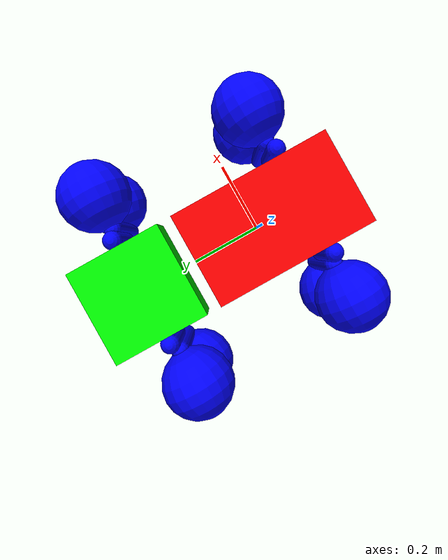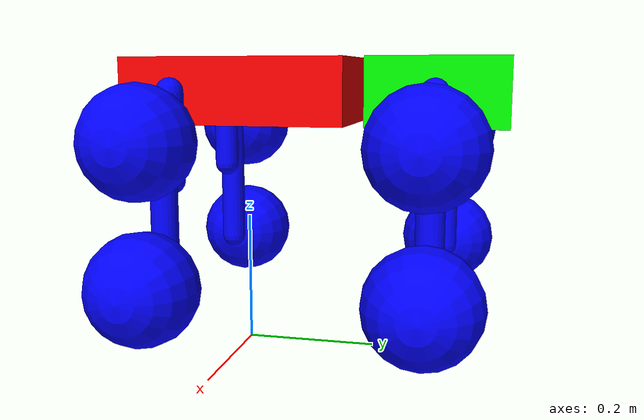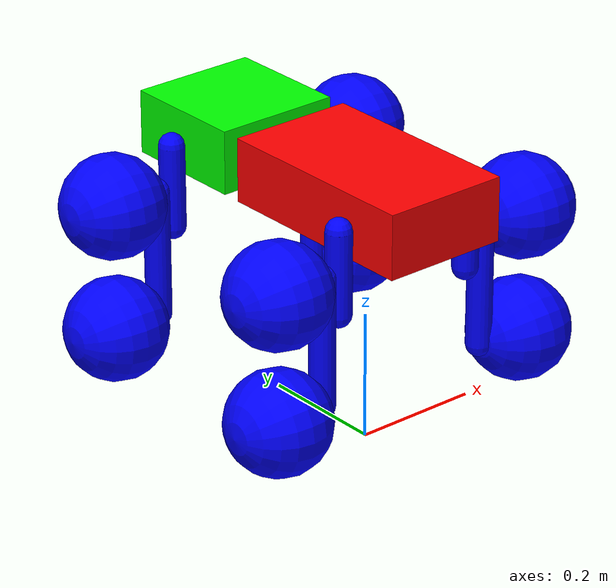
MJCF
<mujoco>
  <asset>
    <texture type="skybox" builtin="gradient" rgb1="1 1 1" rgb2=".6 .8 1" width="256" height="256"/>
  </asset>

    <worldbody>
        <light diffuse=".5 .5 .5" pos="0 0 3" dir="0 0 -1"/>
        <!-- Rear Body Section -->
        <body name="rearBody" pos="0 0 0.4">
        <geom  type="box" size="0.1 0.17 0.05" rgba="1 0 0 1"/>
        <joint type = "free"/>
            <!-- Front Body Section -->
            <body name="frontBody" pos = "0 .3 0">
            <joint type = "hinge" axis = "0 1 0" name = "waist" damping="4" stiffness = "8"/>
            <geom type="box" size="0.1 0.1 0.05" rgba="0 1 0 1"/>
                <!-- Font Right Leg-->
                <!-- Front Right Thigh -->

                <body name="fr_thigh" pos=".12 0 -0.065">
                <joint type="hinge" axis="1 0 0" pos = "0 0 .065" name="fr_hip" damping="4"/>
                <geom type="capsule" size="0.02 0.065" rgba="0 0 1 1"/>
                <!-- Front Right Calf -->
                    <body name="fr_calf" pos=".03 0 -0.1">
                    <geom type="capsule" size="0.02 0.1" rgba="0 0 1 1"/>
                    <joint type="hinge" axis="1 0 0" name="fr_knee" damping="4"/>
                        <!-- Front Right Wheel 1 -->
                        <body name="fr_wheel1" pos=".08 0 -0.1" zaxis = "1 0 0">
                        <geom type="sphere" size="0.08" rgba="0 0 1 1" friction = "0.4 0.005 0.005" solref="0.1 1"/>
                        <joint type="hinge" axis="0 0 1" name="fr_wheel1_joint" damping="4"/>
                        </body>
                        <!-- Front Right Wheel 2 -->
                        <body name="fr_wheel2" pos=".08 0 0.1" zaxis = "1 0 0">
                        <geom type="sphere" size="0.08" rgba="0 0 1 1" friction = "0.4 0.005 0.005" solref="0.1 1"/>
                        <joint type="hinge" axis="0 0 1" name="fr_wheel2_joint" damping="4"/>

                        </body>
                    </body>
                </body>
                <!-- Front Left Leg -->
                <!-- Front Left Thigh -->
                <body name="fl_thigh" pos="-.12 0 -0.065">
                <joint type="hinge" axis="1 0 0" pos = "0 0 .065" name="fl_hip" damping="4"/>
                <geom type="capsule" size="0.02 0.065" rgba="0 0 1 1"/>
                    <!-- Front Left Calf -->
                    <body name="fl_calf" pos="-.03 0 -0.1">
                    <geom type="capsule" size="0.02 0.1" rgba="0 0 1 1"/>
                    <joint type="hinge" axis="1 0 0" name="fl_knee" damping="4"/>
                        <!-- Front Left Wheel 1 -->
                        <body name="fl_wheel1" pos="-.08 0 -0.1" zaxis = "1 0 0">
                        <geom type="sphere" size="0.08" rgba="0 0 1 1" friction = "0.4 0.005 0.005" solref="0.1 1"/>
                        <joint type="hinge" axis="0 0 1" name="fl_wheel1_joint" damping="4"/>
                        </body>
                        <!-- Front Left Wheel 2 -->
                        <body name="fl_wheel2" pos="-.08 0 0.1" zaxis = "1 0 0">
                        <geom type="sphere" size="0.08" rgba="0 0 1 1" friction = "0.4 0.005 0.005" solref="0.1 1"/>
                        <joint type="hinge" axis="0 0 1" name="fl_wheel2_joint" damping="4"/>
                        </body>
                    </body>
                </body>
            </body>

            <!-- Back Right Leg -->
            <!-- Back Right Thigh -->
            <body name="br_thigh" pos=".12 -0.08 -0.065">
            <joint type="hinge" axis="1 0 0" pos = "0 0 .065" name="br_hip" damping="4"/>
             <geom type="capsule" size="0.02 0.065" rgba="0 0 1 1"/>
                <!-- Back Right Calf -->
                <body name="br_calf" pos=".03 0 -0.1">
                <geom type="capsule" size="0.02 0.1" rgba="0 0 1 1"/>
                <joint type="hinge" axis="1 0 0" name="br_knee" damping="4"/>
                    <!-- Back Right Wheel 1 -->
                    <body name="br_wheel1" pos=".08 0 -0.1" zaxis = "1 0 0">
                    <geom type="sphere" size="0.08" rgba="0 0 1 1" friction = "0.4 0.005 0.005" solref="0.1 1"/>
                    <joint type="hinge" axis="0 0 1" name="br_wheel1_joint" damping="4"/>
                    </body>
                    <!-- Back Right Wheel 2 -->
                    <body name="br_wheel2" pos=".08 0 0.1" zaxis = "1 0 0">
                    <geom type="sphere" size="0.08" rgba="0 0 1 1" friction = "0.4 0.005 0.005" solref="0.1 1"/>
                    <joint type="hinge" axis="0 0 1" name="br_wheel2_joint" damping="4"/>
                    </body>
                </body>
                </body>

            <!-- Back Left Leg -->
            <!-- Back Left Thigh -->
            <body name="bl_thigh" pos="-.12 -0.08 -0.065">
            <joint type="hinge" axis="1 0 0" pos = "0 0 .065" name="bl_hip" damping="4"/>
            <geom type="capsule" size="0.02 0.065" rgba="0 0 1 1"/>
                <!-- Back Left Calf -->
                <body name="bl_calf" pos="-.03 0 -0.1">
                <geom type="capsule" size="0.02 0.1" rgba="0 0 1 1"/>
                <joint type="hinge" axis="1 0 0" name="bl_knee" damping="4"/>
                    <!-- Back Left Wheel 1 -->
                    <body name="bl_wheel1" pos="-.08 0 -0.1" zaxis = "1 0 0">
                    <geom type="sphere" size="0.08" rgba="0 0 1 1" friction = "0.4 0.005 0.005" solref="0.1 1"/>
                    <joint type="hinge" axis="0 0 1" name="bl_wheel1_joint" damping="4"/>
                    </body>
                    <!-- Back Left Wheel 2 -->
                    <body name="bl_wheel2" pos="-.08 0 0.1" zaxis = "1 0 0">
                    <geom type="sphere" size="0.08" rgba="0 0 1 1" friction = "0.4 0.005 0.005" solref="0.1 1"/>
                    <joint type="hinge" axis="0 0 1" name="bl_wheel2_joint" damping="4"/>
                    </body>
                </body>
            </body>

        </body>
    </worldbody>
    <!-- Defining the actuators -->
    <actuator>
        <position joint="fr_hip" kp="30"/>
        <position joint="fr_knee" kp="30"/>
        <position joint="fr_wheel1_joint" kp="30"/>
        <position joint="fr_wheel2_joint" kp="30"/>
        <position joint="fl_hip" kp="30"/>
        <position joint="fl_knee" kp="30"/>
        <position joint="fl_wheel1_joint" kp="30"/>
        <position joint="fl_wheel2_joint" kp="30"/>
        <position joint="br_hip" kp="30"/>
        <position joint="br_knee" kp="30"/>
        <position joint="br_wheel1_joint" kp="30"/>
        <position joint="br_wheel2_joint" kp="30"/>
        <position joint="bl_hip" kp="30"/>
        <position joint="bl_knee" kp="30"/>
        <position joint="bl_wheel1_joint" kp="30"/>
        <position joint="bl_wheel2_joint" kp="30"/>
    </actuator>
    <keyframe>
    <key name="home"
        qpos="0 0 0.28
            1 0 0 0
            0.0 0.5 1.0
            0.0 0.5 1.0
            0.0 0.5 1.0
            0.0 0.5 1.0
            0.0 0.5 1.0
            0.0 0.5"
        ctrl="0 0 0 0
             0 0 0 0
             0 0 0 0
             0 0 0 0"/>
</keyframe>
</mujoco>
